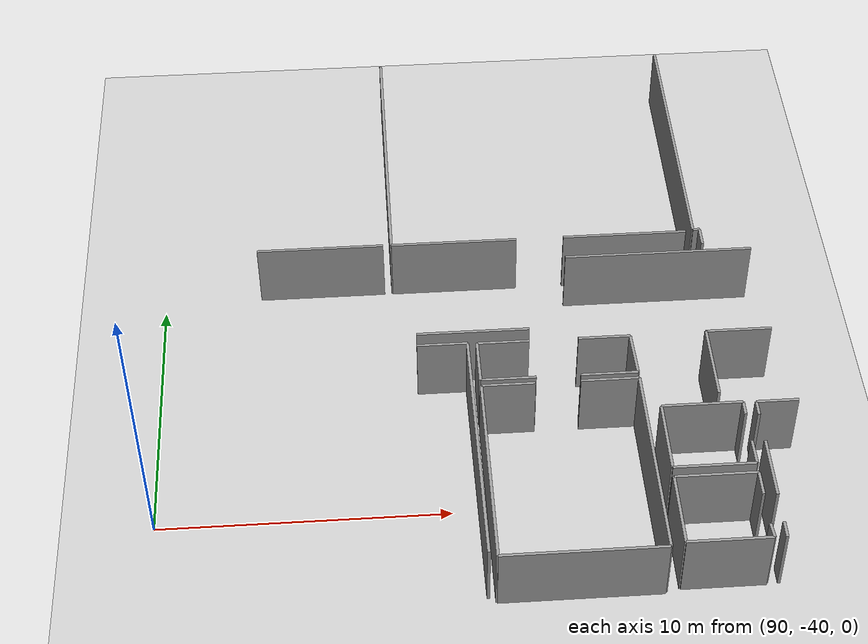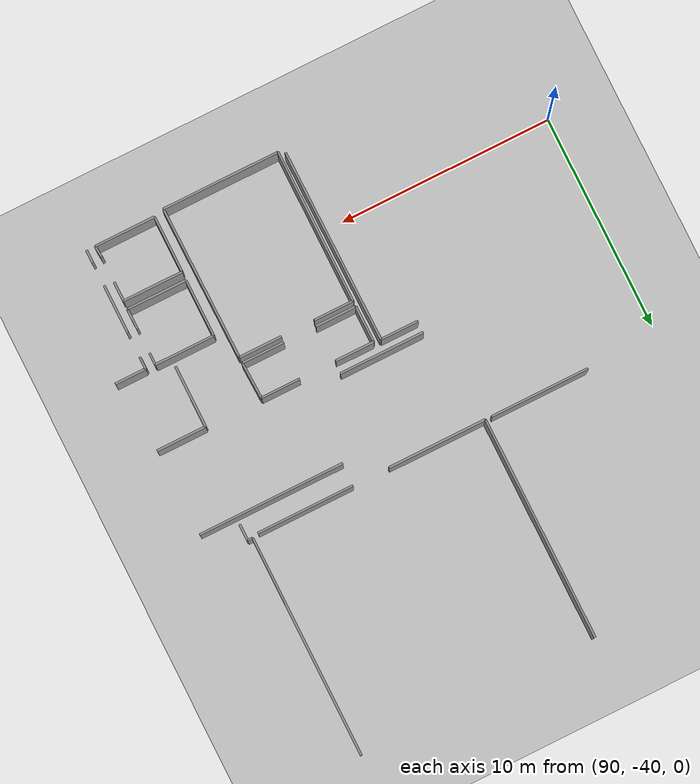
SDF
<sdf version="1.6">
 <world name="default">
  <model name="ground_plane">
   <static>1</static>
   <link name="link">
    <collision name="collision">
     <geometry><plane><normal>0 0 1</normal><size>100 100</size></plane></geometry>
     <surface><friction><ode><mu>100</mu><mu2>50</mu2></ode></friction></surface>
    </collision>
    <visual name="visual">
     <cast_shadows>0</cast_shadows>
     <geometry><plane><normal>0 0 1</normal><size>100 100</size></plane></geometry>
     <material>
      <script><uri>file://media/materials/scripts/gazebo.material</uri><name>Gazebo/Grey</name></script>
     </material>
    </visual>
   </link>
  </model>
  <model name="50015848">
   <static>1</static>
   <link name="Wall_1237">
    <collision name="Wall_1237_Collision">
     <geometry><box><size>0.76752786253 0.1 2.5</size></box></geometry>
     <pose>0.383763931265 0 1.25 0 0 0</pose>
    </collision>
    <visual name="Wall_1237_Visual">
     <pose>0.383763931265 0 1.25 0 0 0</pose>
     <geometry><box><size>0.76752786253 0.1 2.5</size></box></geometry>
     <material>
      <script><uri>file://media/materials/scripts/gazebo.material</uri><name>Gazebo/Grey</name></script>
      <ambient>1 1 1 1</ambient>
     </material>
    </visual>
    <pose>241.620815863 -73.8793141726 0 0 0 1.57079632679</pose>
   </link>
   <link name="Wall_1238">
    <collision name="Wall_1238_Collision">
     <geometry><box><size>0.241041808067 0.1 2.5</size></box></geometry>
     <pose>0.120520904034 0 1.25 0 0 0</pose>
    </collision>
    <visual name="Wall_1238_Visual">
     <pose>0.120520904034 0 1.25 0 0 0</pose>
     <geometry><box><size>0.241041808067 0.1 2.5</size></box></geometry>
     <material>
      <script><uri>file://media/materials/scripts/gazebo.material</uri><name>Gazebo/Grey</name></script>
      <ambient>1 1 1 1</ambient>
     </material>
    </visual>
    <pose>241.620815863 -73.1117863101 0 0 0 3.14159265359</pose>
   </link>
   <link name="Wall_1239">
    <collision name="Wall_1239_Collision">
     <geometry><box><size>10.3561709874 0.1 2.5</size></box></geometry>
     <pose>5.17808549372 0 1.25 0 0 0</pose>
    </collision>
    <visual name="Wall_1239_Visual">
     <pose>5.17808549372 0 1.25 0 0 0</pose>
     <geometry><box><size>10.3561709874 0.1 2.5</size></box></geometry>
     <material>
      <script><uri>file://media/materials/scripts/gazebo.material</uri><name>Gazebo/Grey</name></script>
      <ambient>1 1 1 1</ambient>
     </material>
    </visual>
    <pose>241.379774055 -73.1117863101 0 0 0 1.57079632679</pose>
   </link>
   <link name="Wall_1245">
    <collision name="Wall_1245_Collision">
     <geometry><box><size>4.53666055605 0.1 2.5</size></box></geometry>
     <pose>2.26833027802 0 1.25 0 0 0</pose>
    </collision>
    <visual name="Wall_1245_Visual">
     <pose>2.26833027802 0 1.25 0 0 0</pose>
     <geometry><box><size>4.53666055605 0.1 2.5</size></box></geometry>
     <material>
      <script><uri>file://media/materials/scripts/gazebo.material</uri><name>Gazebo/Grey</name></script>
      <ambient>1 1 1 1</ambient>
     </material>
    </visual>
    <pose>241.09559845 -73.1952628942 0 0 0 3.14159265359</pose>
   </link>
   <link name="Wall_1246">
    <collision name="Wall_1246_Collision">
     <geometry><box><size>4.60516717518 0.1 2.5</size></box></geometry>
     <pose>2.30258358759 0 1.25 0 0 0</pose>
    </collision>
    <visual name="Wall_1246_Visual">
     <pose>2.30258358759 0 1.25 0 0 0</pose>
     <geometry><box><size>4.60516717518 0.1 2.5</size></box></geometry>
     <material>
      <script><uri>file://media/materials/scripts/gazebo.material</uri><name>Gazebo/Grey</name></script>
      <ambient>1 1 1 1</ambient>
     </material>
    </visual>
    <pose>234.82851144 -73.1952628942 0 0 0 3.14159265359</pose>
   </link>
   <link name="Wall_1247">
    <collision name="Wall_1247_Collision">
     <geometry><box><size>10.4152896625 0.1 2.5</size></box></geometry>
     <pose>5.20764483124 0 1.25 0 0 0</pose>
    </collision>
    <visual name="Wall_1247_Visual">
     <pose>5.20764483124 0 1.25 0 0 0</pose>
     <geometry><box><size>10.4152896625 0.1 2.5</size></box></geometry>
     <material>
      <script><uri>file://media/materials/scripts/gazebo.material</uri><name>Gazebo/Grey</name></script>
      <ambient>1 1 1 1</ambient>
     </material>
    </visual>
    <pose>230.223344265 -73.1952628942 0 0 0 1.57079632679</pose>
   </link>
   <link name="Wall_1259">
    <collision name="Wall_1259_Collision">
     <geometry><box><size>4.60770445737 0.1 2.5</size></box></geometry>
     <pose>2.30385222869 0 1.25 0 0 0</pose>
    </collision>
    <visual name="Wall_1259_Visual">
     <pose>2.30385222869 0 1.25 0 0 0</pose>
     <geometry><box><size>4.60770445737 0.1 2.5</size></box></geometry>
     <material>
      <script><uri>file://media/materials/scripts/gazebo.material</uri><name>Gazebo/Grey</name></script>
      <ambient>1 1 1 1</ambient>
     </material>
    </visual>
    <pose>229.923944966 -73.1912032426 0 0 0 3.14159265359</pose>
   </link>
   <link name="Wall_1485">
    <collision name="Wall_1485_Collision">
     <geometry><box><size>6.82528909159 0.1 2.5</size></box></geometry>
     <pose>3.41264454579 0 1.25 0 0 0</pose>
    </collision>
    <visual name="Wall_1485_Visual">
     <pose>3.41264454579 0 1.25 0 0 0</pose>
     <geometry><box><size>6.82528909159 0.1 2.5</size></box></geometry>
     <material>
      <script><uri>file://media/materials/scripts/gazebo.material</uri><name>Gazebo/Grey</name></script>
      <ambient>1 1 1 1</ambient>
     </material>
    </visual>
    <pose>236.520878661 -74.2462051773 0 0 0 0.0</pose>
   </link>
   <link name="Wall_1488">
    <collision name="Wall_1488_Collision">
     <geometry><box><size>3.97084662763 0.1 2.5</size></box></geometry>
     <pose>1.98542331382 0 1.25 0 0 0</pose>
    </collision>
    <visual name="Wall_1488_Visual">
     <pose>1.98542331382 0 1.25 0 0 0</pose>
     <geometry><box><size>3.97084662763 0.1 2.5</size></box></geometry>
     <material>
      <script><uri>file://media/materials/scripts/gazebo.material</uri><name>Gazebo/Grey</name></script>
      <ambient>1 1 1 1</ambient>
     </material>
    </visual>
    <pose>234.891943495 -77.7331920913 0 0 0 3.14159265359</pose>
   </link>
   <link name="Wall_1620">
    <collision name="Wall_1620_Collision">
     <geometry><box><size>1.77102296875 0.1 2.5</size></box></geometry>
     <pose>0.885511484373 0 1.25 0 0 0</pose>
    </collision>
    <visual name="Wall_1620_Visual">
     <pose>0.885511484373 0 1.25 0 0 0</pose>
     <geometry><box><size>1.77102296875 0.1 2.5</size></box></geometry>
     <material>
      <script><uri>file://media/materials/scripts/gazebo.material</uri><name>Gazebo/Grey</name></script>
      <ambient>1 1 1 1</ambient>
     </material>
    </visual>
    <pose>230.905873174 -78.2743943825 0 0 0 0.0</pose>
   </link>
   <link name="Wall_1621">
    <collision name="Wall_1621_Collision">
     <geometry><box><size>9.03671895334 0.1 2.5</size></box></geometry>
     <pose>4.51835947667 0 1.25 0 0 0</pose>
    </collision>
    <visual name="Wall_1621_Visual">
     <pose>4.51835947667 0 1.25 0 0 0</pose>
     <geometry><box><size>9.03671895334 0.1 2.5</size></box></geometry>
     <material>
      <script><uri>file://media/materials/scripts/gazebo.material</uri><name>Gazebo/Grey</name></script>
      <ambient>1 1 1 1</ambient>
     </material>
    </visual>
    <pose>232.676896143 -78.2743943825 0 0 0 -1.56433846346</pose>
   </link>
   <link name="Wall_1622">
    <collision name="Wall_1622_Collision">
     <geometry><box><size>1.97654282615 0.1 2.5</size></box></geometry>
     <pose>0.988271413076 0 1.25 0 0 0</pose>
    </collision>
    <visual name="Wall_1622_Visual">
     <pose>0.988271413076 0 1.25 0 0 0</pose>
     <geometry><box><size>1.97654282615 0.1 2.5</size></box></geometry>
     <material>
      <script><uri>file://media/materials/scripts/gazebo.material</uri><name>Gazebo/Grey</name></script>
      <ambient>1 1 1 1</ambient>
     </material>
    </visual>
    <pose>238.433989432 -80.0202982575 0 0 0 3.14159265359</pose>
   </link>
   <link name="Wall_1623">
    <collision name="Wall_1623_Collision">
     <geometry><box><size>1.91818533578 0.1 2.5</size></box></geometry>
     <pose>0.959092667889 0 1.25 0 0 0</pose>
    </collision>
    <visual name="Wall_1623_Visual">
     <pose>0.959092667889 0 1.25 0 0 0</pose>
     <geometry><box><size>1.91818533578 0.1 2.5</size></box></geometry>
     <material>
      <script><uri>file://media/materials/scripts/gazebo.material</uri><name>Gazebo/Grey</name></script>
      <ambient>1 1 1 1</ambient>
     </material>
    </visual>
    <pose>234.922390881 -80.0202982575 0 0 0 3.14159265359</pose>
   </link>
   <link name="Wall_1624">
    <collision name="Wall_1624_Collision">
     <geometry><box><size>1.70759091399 0.1 2.5</size></box></geometry>
     <pose>0.853795456996 0 1.25 0 0 0</pose>
    </collision>
    <visual name="Wall_1624_Visual">
     <pose>0.853795456996 0 1.25 0 0 0</pose>
     <geometry><box><size>1.70759091399 0.1 2.5</size></box></geometry>
     <material>
      <script><uri>file://media/materials/scripts/gazebo.material</uri><name>Gazebo/Grey</name></script>
      <ambient>1 1 1 1</ambient>
     </material>
    </visual>
    <pose>233.004205545 -80.0202982575 0 0 0 1.57079632679</pose>
   </link>
   <link name="Wall_1625">
    <collision name="Wall_1625_Collision">
     <geometry><box><size>1.82430589474 0.1 2.5</size></box></geometry>
     <pose>0.91215294737 0 1.25 0 0 0</pose>
    </collision>
    <visual name="Wall_1625_Visual">
     <pose>0.91215294737 0 1.25 0 0 0</pose>
     <geometry><box><size>1.82430589474 0.1 2.5</size></box></geometry>
     <material>
      <script><uri>file://media/materials/scripts/gazebo.material</uri><name>Gazebo/Grey</name></script>
      <ambient>1 1 1 1</ambient>
     </material>
    </visual>
    <pose>233.004205545 -78.3127073435 0 0 0 0.0</pose>
   </link>
   <link name="Wall_1626">
    <collision name="Wall_1626_Collision">
     <geometry><box><size>1.82176861255 0.1 2.5</size></box></geometry>
     <pose>0.910884306275 0 1.25 0 0 0</pose>
    </collision>
    <visual name="Wall_1626_Visual">
     <pose>0.910884306275 0 1.25 0 0 0</pose>
     <geometry><box><size>1.82176861255 0.1 2.5</size></box></geometry>
     <material>
      <script><uri>file://media/materials/scripts/gazebo.material</uri><name>Gazebo/Grey</name></script>
      <ambient>1 1 1 1</ambient>
     </material>
    </visual>
    <pose>236.553863329 -78.3127073435 0 0 0 0.0</pose>
   </link>
   <link name="Wall_1627">
    <collision name="Wall_1627_Collision">
     <geometry><box><size>1.70858781637 0.1 2.5</size></box></geometry>
     <pose>0.854293908183 0 1.25 0 0 0</pose>
    </collision>
    <visual name="Wall_1627_Visual">
     <pose>0.854293908183 0 1.25 0 0 0</pose>
     <geometry><box><size>1.70858781637 0.1 2.5</size></box></geometry>
     <material>
      <script><uri>file://media/materials/scripts/gazebo.material</uri><name>Gazebo/Grey</name></script>
      <ambient>1 1 1 1</ambient>
     </material>
    </visual>
    <pose>238.375631942 -78.3127073435 0 0 0 -1.53663428822</pose>
   </link>
   <link name="Wall_1628">
    <collision name="Wall_1628_Collision">
     <geometry><box><size>5.50082778831 0.1 2.5</size></box></geometry>
     <pose>2.75041389416 0 1.25 0 0 0</pose>
    </collision>
    <visual name="Wall_1628_Visual">
     <pose>2.75041389416 0 1.25 0 0 0</pose>
     <geometry><box><size>5.50082778831 0.1 2.5</size></box></geometry>
     <material>
      <script><uri>file://media/materials/scripts/gazebo.material</uri><name>Gazebo/Grey</name></script>
      <ambient>1 1 1 1</ambient>
     </material>
    </visual>
    <pose>238.510107898 -87.4738184194 0 0 0 3.14159265359</pose>
   </link>
   <link name="Wall_1629">
    <collision name="Wall_1629_Collision">
     <geometry><box><size>7.18507570616 0.1 2.5</size></box></geometry>
     <pose>3.59253785308 0 1.25 0 0 0</pose>
    </collision>
    <visual name="Wall_1629_Visual">
     <pose>3.59253785308 0 1.25 0 0 0</pose>
     <geometry><box><size>7.18507570616 0.1 2.5</size></box></geometry>
     <material>
      <script><uri>file://media/materials/scripts/gazebo.material</uri><name>Gazebo/Grey</name></script>
      <ambient>1 1 1 1</ambient>
     </material>
    </visual>
    <pose>233.00928011 -87.4738184194 0 0 0 1.57079632679</pose>
   </link>
   <link name="Wall_1630">
    <collision name="Wall_1630_Collision">
     <geometry><box><size>1.86490240978 0.1 2.5</size></box></geometry>
     <pose>0.932451204892 0 1.25 0 0 0</pose>
    </collision>
    <visual name="Wall_1630_Visual">
     <pose>0.932451204892 0 1.25 0 0 0</pose>
     <geometry><box><size>1.86490240978 0.1 2.5</size></box></geometry>
     <material>
      <script><uri>file://media/materials/scripts/gazebo.material</uri><name>Gazebo/Grey</name></script>
      <ambient>1 1 1 1</ambient>
     </material>
    </visual>
    <pose>233.00928011 -80.2887427132 0 0 0 0.0</pose>
   </link>
   <link name="Wall_1631">
    <collision name="Wall_1631_Collision">
     <geometry><box><size>2.01713934119 0.1 2.5</size></box></geometry>
     <pose>1.0085696706 0 1.25 0 0 0</pose>
    </collision>
    <visual name="Wall_1631_Visual">
     <pose>1.0085696706 0 1.25 0 0 0</pose>
     <geometry><box><size>2.01713934119 0.1 2.5</size></box></geometry>
     <material>
      <script><uri>file://media/materials/scripts/gazebo.material</uri><name>Gazebo/Grey</name></script>
      <ambient>1 1 1 1</ambient>
     </material>
    </visual>
    <pose>236.42699922 -80.2887427132 0 0 0 0.0</pose>
   </link>
   <link name="Wall_1632">
    <collision name="Wall_1632_Collision">
     <geometry><box><size>7.18537854651 0.1 2.5</size></box></geometry>
     <pose>3.59268927325 0 1.25 0 0 0</pose>
    </collision>
    <visual name="Wall_1632_Visual">
     <pose>3.59268927325 0 1.25 0 0 0</pose>
     <geometry><box><size>7.18537854651 0.1 2.5</size></box></geometry>
     <material>
      <script><uri>file://media/materials/scripts/gazebo.material</uri><name>Gazebo/Grey</name></script>
      <ambient>1 1 1 1</ambient>
     </material>
    </visual>
    <pose>238.444138561 -80.2887427132 0 0 0 -1.56161514541</pose>
   </link>
   <link name="Wall_1646">
    <collision name="Wall_1646_Collision">
     <geometry><box><size>2.88514357846 0.1 2.5</size></box></geometry>
     <pose>1.44257178923 0 1.25 0 0 0</pose>
    </collision>
    <visual name="Wall_1646_Visual">
     <pose>1.44257178923 0 1.25 0 0 0</pose>
     <geometry><box><size>2.88514357846 0.1 2.5</size></box></geometry>
     <material>
      <script><uri>file://media/materials/scripts/gazebo.material</uri><name>Gazebo/Grey</name></script>
      <ambient>1 1 1 1</ambient>
     </material>
    </visual>
    <pose>241.060076499 -81.1602991456 0 0 0 1.57079632679</pose>
   </link>
   <link name="Wall_1647">
    <collision name="Wall_1647_Collision">
     <geometry><box><size>2.31653863964 0.1 2.5</size></box></geometry>
     <pose>1.15826931982 0 1.25 0 0 0</pose>
    </collision>
    <visual name="Wall_1647_Visual">
     <pose>1.15826931982 0 1.25 0 0 0</pose>
     <geometry><box><size>2.31653863964 0.1 2.5</size></box></geometry>
     <material>
      <script><uri>file://media/materials/scripts/gazebo.material</uri><name>Gazebo/Grey</name></script>
      <ambient>1 1 1 1</ambient>
     </material>
    </visual>
    <pose>241.060076499 -78.2751555671 0 0 0 0.0</pose>
   </link>
   <link name="Wall_1651">
    <collision name="Wall_1651_Collision">
     <geometry><box><size>0.592455391407 0.1 2.5</size></box></geometry>
     <pose>0.296227695704 0 1.25 0 0 0</pose>
    </collision>
    <visual name="Wall_1651_Visual">
     <pose>0.296227695704 0 1.25 0 0 0</pose>
     <geometry><box><size>0.592455391407 0.1 2.5</size></box></geometry>
     <material>
      <script><uri>file://media/materials/scripts/gazebo.material</uri><name>Gazebo/Grey</name></script>
      <ambient>1 1 1 1</ambient>
     </material>
    </visual>
    <pose>242.247524564 -87.3469543099 0 0 0 1.57079632679</pose>
   </link>
   <link name="Wall_1652">
    <collision name="Wall_1652_Collision">
     <geometry><box><size>2.27746449391 0.1 2.5</size></box></geometry>
     <pose>1.13873224695 0 1.25 0 0 0</pose>
    </collision>
    <visual name="Wall_1652_Visual">
     <pose>1.13873224695 0 1.25 0 0 0</pose>
     <geometry><box><size>2.27746449391 0.1 2.5</size></box></geometry>
     <material>
      <script><uri>file://media/materials/scripts/gazebo.material</uri><name>Gazebo/Grey</name></script>
      <ambient>1 1 1 1</ambient>
     </material>
    </visual>
    <pose>242.247524564 -85.642915591 0 0 0 1.57079632679</pose>
   </link>
   <link name="Wall_1653">
    <collision name="Wall_1653_Collision">
     <geometry><box><size>0.570381036353 0.1 2.5</size></box></geometry>
     <pose>0.285190518176 0 1.25 0 0 0</pose>
    </collision>
    <visual name="Wall_1653_Visual">
     <pose>0.285190518176 0 1.25 0 0 0</pose>
     <geometry><box><size>0.570381036353 0.1 2.5</size></box></geometry>
     <material>
      <script><uri>file://media/materials/scripts/gazebo.material</uri><name>Gazebo/Grey</name></script>
      <ambient>1 1 1 1</ambient>
     </material>
    </visual>
    <pose>242.247524564 -82.2132712545 0 0 0 1.57079632679</pose>
   </link>
   <link name="Wall_1654">
    <collision name="Wall_1654_Collision">
     <geometry><box><size>1.45893725935 0.1 2.5</size></box></geometry>
     <pose>0.729468629677 0 1.25 0 0 0</pose>
    </collision>
    <visual name="Wall_1654_Visual">
     <pose>0.729468629677 0 1.25 0 0 0</pose>
     <geometry><box><size>1.45893725935 0.1 2.5</size></box></geometry>
     <material>
      <script><uri>file://media/materials/scripts/gazebo.material</uri><name>Gazebo/Grey</name></script>
      <ambient>1 1 1 1</ambient>
     </material>
    </visual>
    <pose>242.247524564 -81.6428902181 0 0 0 0.0</pose>
   </link>
   <link name="Wall_1657">
    <collision name="Wall_1657_Collision">
     <geometry><box><size>2.80115953796 0.1 2.5</size></box></geometry>
     <pose>1.40057976898 0 1.25 0 0 0</pose>
    </collision>
    <visual name="Wall_1657_Visual">
     <pose>1.40057976898 0 1.25 0 0 0</pose>
     <geometry><box><size>2.80115953796 0.1 2.5</size></box></geometry>
     <material>
      <script><uri>file://media/materials/scripts/gazebo.material</uri><name>Gazebo/Grey</name></script>
      <ambient>1 1 1 1</ambient>
     </material>
    </visual>
    <pose>241.81364931 -84.2895292707 0 0 0 3.14159265359</pose>
   </link>
   <link name="Wall_1658">
    <collision name="Wall_1658_Collision">
     <geometry><box><size>2.66922086407 0.1 2.5</size></box></geometry>
     <pose>1.33461043204 0 1.25 0 0 0</pose>
    </collision>
    <visual name="Wall_1658_Visual">
     <pose>1.33461043204 0 1.25 0 0 0</pose>
     <geometry><box><size>2.66922086407 0.1 2.5</size></box></geometry>
     <material>
      <script><uri>file://media/materials/scripts/gazebo.material</uri><name>Gazebo/Grey</name></script>
      <ambient>1 1 1 1</ambient>
     </material>
    </visual>
    <pose>239.012489772 -84.2895292707 0 0 0 1.57079632679</pose>
   </link>
   <link name="Wall_1659">
    <collision name="Wall_1659_Collision">
     <geometry><box><size>2.78593584482 0.1 2.5</size></box></geometry>
     <pose>1.39296792241 0 1.25 0 0 0</pose>
    </collision>
    <visual name="Wall_1659_Visual">
     <pose>1.39296792241 0 1.25 0 0 0</pose>
     <geometry><box><size>2.78593584482 0.1 2.5</size></box></geometry>
     <material>
      <script><uri>file://media/materials/scripts/gazebo.material</uri><name>Gazebo/Grey</name></script>
      <ambient>1 1 1 1</ambient>
     </material>
    </visual>
    <pose>239.012489772 -81.6203084067 0 0 0 0.0</pose>
   </link>
   <link name="Wall_1660">
    <collision name="Wall_1660_Collision">
     <geometry><box><size>0.550590235269 0.1 2.5</size></box></geometry>
     <pose>0.275295117635 0 1.25 0 0 0</pose>
    </collision>
    <visual name="Wall_1660_Visual">
     <pose>0.275295117635 0 1.25 0 0 0</pose>
     <geometry><box><size>0.550590235269 0.1 2.5</size></box></geometry>
     <material>
      <script><uri>file://media/materials/scripts/gazebo.material</uri><name>Gazebo/Grey</name></script>
      <ambient>1 1 1 1</ambient>
     </material>
    </visual>
    <pose>241.798425616 -81.6203084067 0 0 0 -1.57079632679</pose>
   </link>
   <link name="Wall_1661">
    <collision name="Wall_1661_Collision">
     <geometry><box><size>0.94652869159 0.1 2.5</size></box></geometry>
     <pose>0.473264345795 0 1.25 0 0 0</pose>
    </collision>
    <visual name="Wall_1661_Visual">
     <pose>0.473264345795 0 1.25 0 0 0</pose>
     <geometry><box><size>0.94652869159 0.1 2.5</size></box></geometry>
     <material>
      <script><uri>file://media/materials/scripts/gazebo.material</uri><name>Gazebo/Grey</name></script>
      <ambient>1 1 1 1</ambient>
     </material>
    </visual>
    <pose>241.798425616 -83.3431230138 0 0 0 -1.55471192311</pose>
   </link>
   <link name="Wall_1662">
    <collision name="Wall_1662_Collision">
     <geometry><box><size>2.83921877081 0.1 2.5</size></box></geometry>
     <pose>1.41960938541 0 1.25 0 0 0</pose>
    </collision>
    <visual name="Wall_1662_Visual">
     <pose>1.41960938541 0 1.25 0 0 0</pose>
     <geometry><box><size>2.83921877081 0.1 2.5</size></box></geometry>
     <material>
      <script><uri>file://media/materials/scripts/gazebo.material</uri><name>Gazebo/Grey</name></script>
      <ambient>1 1 1 1</ambient>
     </material>
    </visual>
    <pose>241.839022131 -87.3403573762 0 0 0 3.14159265359</pose>
   </link>
   <link name="Wall_1663">
    <collision name="Wall_1663_Collision">
     <geometry><box><size>2.65907173531 0.1 2.5</size></box></geometry>
     <pose>1.32953586766 0 1.25 0 0 0</pose>
    </collision>
    <visual name="Wall_1663_Visual">
     <pose>1.32953586766 0 1.25 0 0 0</pose>
     <geometry><box><size>2.65907173531 0.1 2.5</size></box></geometry>
     <material>
      <script><uri>file://media/materials/scripts/gazebo.material</uri><name>Gazebo/Grey</name></script>
      <ambient>1 1 1 1</ambient>
     </material>
    </visual>
    <pose>238.999803361 -87.3403573762 0 0 0 1.57079632679</pose>
   </link>
   <link name="Wall_1664">
    <collision name="Wall_1664_Collision">
     <geometry><box><size>2.79862225577 0.1 2.5</size></box></geometry>
     <pose>1.39931112789 0 1.25 0 0 0</pose>
    </collision>
    <visual name="Wall_1664_Visual">
     <pose>1.39931112789 0 1.25 0 0 0</pose>
     <geometry><box><size>2.79862225577 0.1 2.5</size></box></geometry>
     <material>
      <script><uri>file://media/materials/scripts/gazebo.material</uri><name>Gazebo/Grey</name></script>
      <ambient>1 1 1 1</ambient>
     </material>
    </visual>
    <pose>238.999803361 -84.6812856409 0 0 0 0.0</pose>
   </link>
   <link name="Wall_1665">
    <collision name="Wall_1665_Collision">
     <geometry><box><size>0.910630578056 0.1 2.5</size></box></geometry>
     <pose>0.455315289028 0 1.25 0 0 0</pose>
    </collision>
    <visual name="Wall_1665_Visual">
     <pose>0.455315289028 0 1.25 0 0 0</pose>
     <geometry><box><size>0.910630578056 0.1 2.5</size></box></geometry>
     <material>
      <script><uri>file://media/materials/scripts/gazebo.material</uri><name>Gazebo/Grey</name></script>
      <ambient>1 1 1 1</ambient>
     </material>
    </visual>
    <pose>241.798425616 -84.6812856409 0 0 0 -1.57079632679</pose>
   </link>
   <link name="Wall_1666">
    <collision name="Wall_1666_Collision">
     <geometry><box><size>0.542469745505 0.1 2.5</size></box></geometry>
     <pose>0.271234872752 0 1.25 0 0 0</pose>
    </collision>
    <visual name="Wall_1666_Visual">
     <pose>0.271234872752 0 1.25 0 0 0</pose>
     <geometry><box><size>0.542469745505 0.1 2.5</size></box></geometry>
     <material>
      <script><uri>file://media/materials/scripts/gazebo.material</uri><name>Gazebo/Grey</name></script>
      <ambient>1 1 1 1</ambient>
     </material>
    </visual>
    <pose>241.798425616 -86.7994088132 0 0 0 -1.49588983729</pose>
   </link>
   <pose>-131.8 43.7717730528 0 0 0 0</pose>
  </model>
 </world>
</sdf>
